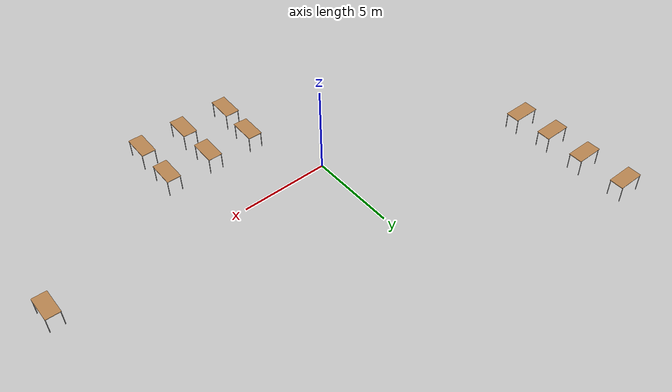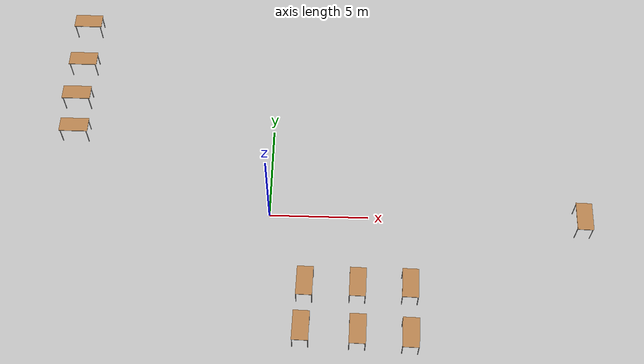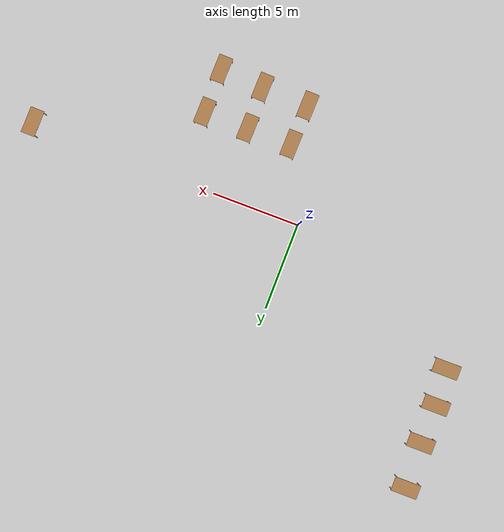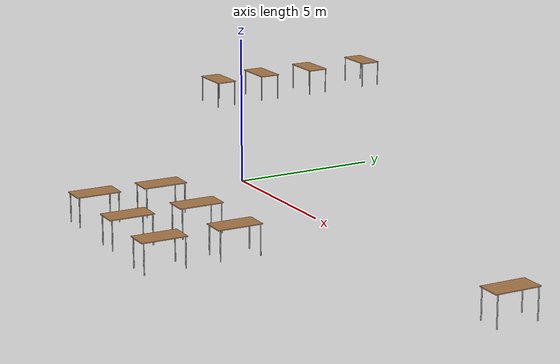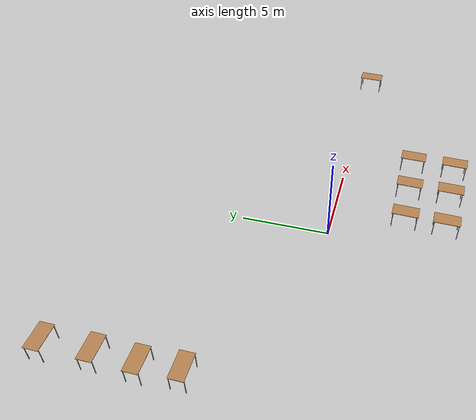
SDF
<?xml version='1.0'?>
<sdf version='1.6'>
  <model name='robot'>
    <model name='table'>
      <static>1</static>
      <link name='link'>
        <collision name='surface'>
          <pose frame=''>0 0 1 0 -0 0</pose>
          <geometry>
            <box>
              <size>1.5 0.8 0.03</size>
            </box>
          </geometry>
          <surface>
            <friction>
              <ode>
                <mu>0.6</mu>
                <mu2>0.6</mu2>
              </ode>
            </friction>
          </surface>
        </collision>
        <visual name='visual1'>
          <pose frame=''>0 0 1 0 -0 0</pose>
          <geometry>
            <box>
              <size>1.5 0.8 0.03</size>
            </box>
          </geometry>
          <material>
            <script>
              <uri>file://media/materials/scripts/gazebo.material</uri>
              <name>Gazebo/Wood</name>
            </script>
          </material>
        </visual>
        <collision name='front_left_leg'>
          <pose frame=''>0.68 0.38 0.5 0 -0 0</pose>
          <geometry>
            <cylinder>
              <radius>0.02</radius>
              <length>1</length>
            </cylinder>
          </geometry>
        </collision>
        <visual name='front_left_leg'>
          <pose frame=''>0.68 0.38 0.5 0 -0 0</pose>
          <geometry>
            <cylinder>
              <radius>0.02</radius>
              <length>1</length>
            </cylinder>
          </geometry>
          <material>
            <script>
              <uri>file://media/materials/scripts/gazebo.material</uri>
              <name>Gazebo/Grey</name>
            </script>
          </material>
        </visual>
        <collision name='front_right_leg'>
          <pose frame=''>0.68 -0.38 0.5 0 -0 0</pose>
          <geometry>
            <cylinder>
              <radius>0.02</radius>
              <length>1</length>
            </cylinder>
          </geometry>
        </collision>
        <visual name='front_right_leg'>
          <pose frame=''>0.68 -0.38 0.5 0 -0 0</pose>
          <geometry>
            <cylinder>
              <radius>0.02</radius>
              <length>1</length>
            </cylinder>
          </geometry>
          <material>
            <script>
              <uri>file://media/materials/scripts/gazebo.material</uri>
              <name>Gazebo/Grey</name>
            </script>
          </material>
        </visual>
        <collision name='back_right_leg'>
          <pose frame=''>-0.68 -0.38 0.5 0 -0 0</pose>
          <geometry>
            <cylinder>
              <radius>0.02</radius>
              <length>1</length>
            </cylinder>
          </geometry>
        </collision>
        <visual name='back_right_leg'>
          <pose frame=''>-0.68 -0.38 0.5 0 -0 0</pose>
          <geometry>
            <cylinder>
              <radius>0.02</radius>
              <length>1</length>
            </cylinder>
          </geometry>
          <material>
            <script>
              <uri>file://media/materials/scripts/gazebo.material</uri>
              <name>Gazebo/Grey</name>
            </script>
          </material>
        </visual>
        <collision name='back_left_leg'>
          <pose frame=''>-0.68 0.38 0.5 0 -0 0</pose>
          <geometry>
            <cylinder>
              <radius>0.02</radius>
              <length>1</length>
            </cylinder>
          </geometry>
        </collision>
        <visual name='back_left_leg'>
          <pose frame=''>-0.68 0.38 0.5 0 -0 0</pose>
          <geometry>
            <cylinder>
              <radius>0.02</radius>
              <length>1</length>
            </cylinder>
          </geometry>
          <material>
            <script>
              <uri>file://media/materials/scripts/gazebo.material</uri>
              <name>Gazebo/Grey</name>
            </script>
          </material>
        </visual>
      </link>
      <pose frame=''>-10.5095 4.55526 0 0 -0 0</pose>
    </model>
    <model name='table_clone'>
      <static>1</static>
      <link name='link'>
        <collision name='surface'>
          <pose frame=''>0 0 1 0 -0 0</pose>
          <geometry>
            <box>
              <size>1.5 0.8 0.03</size>
            </box>
          </geometry>
          <surface>
            <friction>
              <ode>
                <mu>0.6</mu>
                <mu2>0.6</mu2>
              </ode>
            </friction>
          </surface>
        </collision>
        <visual name='visual1'>
          <pose frame=''>0 0 1 0 -0 0</pose>
          <geometry>
            <box>
              <size>1.5 0.8 0.03</size>
            </box>
          </geometry>
          <material>
            <script>
              <uri>file://media/materials/scripts/gazebo.material</uri>
              <name>Gazebo/Wood</name>
            </script>
          </material>
        </visual>
        <collision name='front_left_leg'>
          <pose frame=''>0.68 0.38 0.5 0 -0 0</pose>
          <geometry>
            <cylinder>
              <radius>0.02</radius>
              <length>1</length>
            </cylinder>
          </geometry>
        </collision>
        <visual name='front_left_leg'>
          <pose frame=''>0.68 0.38 0.5 0 -0 0</pose>
          <geometry>
            <cylinder>
              <radius>0.02</radius>
              <length>1</length>
            </cylinder>
          </geometry>
          <material>
            <script>
              <uri>file://media/materials/scripts/gazebo.material</uri>
              <name>Gazebo/Grey</name>
            </script>
          </material>
        </visual>
        <collision name='front_right_leg'>
          <pose frame=''>0.68 -0.38 0.5 0 -0 0</pose>
          <geometry>
            <cylinder>
              <radius>0.02</radius>
              <length>1</length>
            </cylinder>
          </geometry>
        </collision>
        <visual name='front_right_leg'>
          <pose frame=''>0.68 -0.38 0.5 0 -0 0</pose>
          <geometry>
            <cylinder>
              <radius>0.02</radius>
              <length>1</length>
            </cylinder>
          </geometry>
          <material>
            <script>
              <uri>file://media/materials/scripts/gazebo.material</uri>
              <name>Gazebo/Grey</name>
            </script>
          </material>
        </visual>
        <collision name='back_right_leg'>
          <pose frame=''>-0.68 -0.38 0.5 0 -0 0</pose>
          <geometry>
            <cylinder>
              <radius>0.02</radius>
              <length>1</length>
            </cylinder>
          </geometry>
        </collision>
        <visual name='back_right_leg'>
          <pose frame=''>-0.68 -0.38 0.5 0 -0 0</pose>
          <geometry>
            <cylinder>
              <radius>0.02</radius>
              <length>1</length>
            </cylinder>
          </geometry>
          <material>
            <script>
              <uri>file://media/materials/scripts/gazebo.material</uri>
              <name>Gazebo/Grey</name>
            </script>
          </material>
        </visual>
        <collision name='back_left_leg'>
          <pose frame=''>-0.68 0.38 0.5 0 -0 0</pose>
          <geometry>
            <cylinder>
              <radius>0.02</radius>
              <length>1</length>
            </cylinder>
          </geometry>
        </collision>
        <visual name='back_left_leg'>
          <pose frame=''>-0.68 0.38 0.5 0 -0 0</pose>
          <geometry>
            <cylinder>
              <radius>0.02</radius>
              <length>1</length>
            </cylinder>
          </geometry>
          <material>
            <script>
              <uri>file://media/materials/scripts/gazebo.material</uri>
              <name>Gazebo/Grey</name>
            </script>
          </material>
        </visual>
      </link>
      <pose frame=''>-10.68 6.63716 0 0 -0 0</pose>
    </model>
    <model name='table_clone_0'>
      <static>1</static>
      <link name='link'>
        <collision name='surface'>
          <pose frame=''>0 0 1 0 -0 0</pose>
          <geometry>
            <box>
              <size>1.5 0.8 0.03</size>
            </box>
          </geometry>
          <surface>
            <friction>
              <ode>
                <mu>0.6</mu>
                <mu2>0.6</mu2>
              </ode>
            </friction>
          </surface>
        </collision>
        <visual name='visual1'>
          <pose frame=''>0 0 1 0 -0 0</pose>
          <geometry>
            <box>
              <size>1.5 0.8 0.03</size>
            </box>
          </geometry>
          <material>
            <script>
              <uri>file://media/materials/scripts/gazebo.material</uri>
              <name>Gazebo/Wood</name>
            </script>
          </material>
        </visual>
        <collision name='front_left_leg'>
          <pose frame=''>0.68 0.38 0.5 0 -0 0</pose>
          <geometry>
            <cylinder>
              <radius>0.02</radius>
              <length>1</length>
            </cylinder>
          </geometry>
        </collision>
        <visual name='front_left_leg'>
          <pose frame=''>0.68 0.38 0.5 0 -0 0</pose>
          <geometry>
            <cylinder>
              <radius>0.02</radius>
              <length>1</length>
            </cylinder>
          </geometry>
          <material>
            <script>
              <uri>file://media/materials/scripts/gazebo.material</uri>
              <name>Gazebo/Grey</name>
            </script>
          </material>
        </visual>
        <collision name='front_right_leg'>
          <pose frame=''>0.68 -0.38 0.5 0 -0 0</pose>
          <geometry>
            <cylinder>
              <radius>0.02</radius>
              <length>1</length>
            </cylinder>
          </geometry>
        </collision>
        <visual name='front_right_leg'>
          <pose frame=''>0.68 -0.38 0.5 0 -0 0</pose>
          <geometry>
            <cylinder>
              <radius>0.02</radius>
              <length>1</length>
            </cylinder>
          </geometry>
          <material>
            <script>
              <uri>file://media/materials/scripts/gazebo.material</uri>
              <name>Gazebo/Grey</name>
            </script>
          </material>
        </visual>
        <collision name='back_right_leg'>
          <pose frame=''>-0.68 -0.38 0.5 0 -0 0</pose>
          <geometry>
            <cylinder>
              <radius>0.02</radius>
              <length>1</length>
            </cylinder>
          </geometry>
        </collision>
        <visual name='back_right_leg'>
          <pose frame=''>-0.68 -0.38 0.5 0 -0 0</pose>
          <geometry>
            <cylinder>
              <radius>0.02</radius>
              <length>1</length>
            </cylinder>
          </geometry>
          <material>
            <script>
              <uri>file://media/materials/scripts/gazebo.material</uri>
              <name>Gazebo/Grey</name>
            </script>
          </material>
        </visual>
        <collision name='back_left_leg'>
          <pose frame=''>-0.68 0.38 0.5 0 -0 0</pose>
          <geometry>
            <cylinder>
              <radius>0.02</radius>
              <length>1</length>
            </cylinder>
          </geometry>
        </collision>
        <visual name='back_left_leg'>
          <pose frame=''>-0.68 0.38 0.5 0 -0 0</pose>
          <geometry>
            <cylinder>
              <radius>0.02</radius>
              <length>1</length>
            </cylinder>
          </geometry>
          <material>
            <script>
              <uri>file://media/materials/scripts/gazebo.material</uri>
              <name>Gazebo/Grey</name>
            </script>
          </material>
        </visual>
      </link>
      <pose frame=''>-10.6483 8.89565 0 0 -0 0</pose>
    </model>
    <model name='table_clone_1'>
      <static>1</static>
      <link name='link'>
        <collision name='surface'>
          <pose frame=''>0 0 1 0 -0 0</pose>
          <geometry>
            <box>
              <size>1.5 0.8 0.03</size>
            </box>
          </geometry>
          <surface>
            <friction>
              <ode>
                <mu>0.6</mu>
                <mu2>0.6</mu2>
              </ode>
            </friction>
          </surface>
        </collision>
        <visual name='visual1'>
          <pose frame=''>0 0 1 0 -0 0</pose>
          <geometry>
            <box>
              <size>1.5 0.8 0.03</size>
            </box>
          </geometry>
          <material>
            <script>
              <uri>file://media/materials/scripts/gazebo.material</uri>
              <name>Gazebo/Wood</name>
            </script>
          </material>
        </visual>
        <collision name='front_left_leg'>
          <pose frame=''>0.68 0.38 0.5 0 -0 0</pose>
          <geometry>
            <cylinder>
              <radius>0.02</radius>
              <length>1</length>
            </cylinder>
          </geometry>
        </collision>
        <visual name='front_left_leg'>
          <pose frame=''>0.68 0.38 0.5 0 -0 0</pose>
          <geometry>
            <cylinder>
              <radius>0.02</radius>
              <length>1</length>
            </cylinder>
          </geometry>
          <material>
            <script>
              <uri>file://media/materials/scripts/gazebo.material</uri>
              <name>Gazebo/Grey</name>
            </script>
          </material>
        </visual>
        <collision name='front_right_leg'>
          <pose frame=''>0.68 -0.38 0.5 0 -0 0</pose>
          <geometry>
            <cylinder>
              <radius>0.02</radius>
              <length>1</length>
            </cylinder>
          </geometry>
        </collision>
        <visual name='front_right_leg'>
          <pose frame=''>0.68 -0.38 0.5 0 -0 0</pose>
          <geometry>
            <cylinder>
              <radius>0.02</radius>
              <length>1</length>
            </cylinder>
          </geometry>
          <material>
            <script>
              <uri>file://media/materials/scripts/gazebo.material</uri>
              <name>Gazebo/Grey</name>
            </script>
          </material>
        </visual>
        <collision name='back_right_leg'>
          <pose frame=''>-0.68 -0.38 0.5 0 -0 0</pose>
          <geometry>
            <cylinder>
              <radius>0.02</radius>
              <length>1</length>
            </cylinder>
          </geometry>
        </collision>
        <visual name='back_right_leg'>
          <pose frame=''>-0.68 -0.38 0.5 0 -0 0</pose>
          <geometry>
            <cylinder>
              <radius>0.02</radius>
              <length>1</length>
            </cylinder>
          </geometry>
          <material>
            <script>
              <uri>file://media/materials/scripts/gazebo.material</uri>
              <name>Gazebo/Grey</name>
            </script>
          </material>
        </visual>
        <collision name='back_left_leg'>
          <pose frame=''>-0.68 0.38 0.5 0 -0 0</pose>
          <geometry>
            <cylinder>
              <radius>0.02</radius>
              <length>1</length>
            </cylinder>
          </geometry>
        </collision>
        <visual name='back_left_leg'>
          <pose frame=''>-0.68 0.38 0.5 0 -0 0</pose>
          <geometry>
            <cylinder>
              <radius>0.02</radius>
              <length>1</length>
            </cylinder>
          </geometry>
          <material>
            <script>
              <uri>file://media/materials/scripts/gazebo.material</uri>
              <name>Gazebo/Grey</name>
            </script>
          </material>
        </visual>
      </link>
      <pose frame=''>-10.7409 11.5113 0 0 -0 0</pose>
    </model>
    <model name='table_clone_2'>
      <static>1</static>
      <link name='link'>
        <collision name='surface'>
          <pose frame=''>0 0 1 0 -0 0</pose>
          <geometry>
            <box>
              <size>1.5 0.8 0.03</size>
            </box>
          </geometry>
          <surface>
            <friction>
              <ode>
                <mu>0.6</mu>
                <mu2>0.6</mu2>
              </ode>
            </friction>
          </surface>
        </collision>
        <visual name='visual1'>
          <pose frame=''>0 0 1 0 -0 0</pose>
          <geometry>
            <box>
              <size>1.5 0.8 0.03</size>
            </box>
          </geometry>
          <material>
            <script>
              <uri>file://media/materials/scripts/gazebo.material</uri>
              <name>Gazebo/Wood</name>
            </script>
          </material>
        </visual>
        <collision name='front_left_leg'>
          <pose frame=''>0.68 0.38 0.5 0 -0 0</pose>
          <geometry>
            <cylinder>
              <radius>0.02</radius>
              <length>1</length>
            </cylinder>
          </geometry>
        </collision>
        <visual name='front_left_leg'>
          <pose frame=''>0.68 0.38 0.5 0 -0 0</pose>
          <geometry>
            <cylinder>
              <radius>0.02</radius>
              <length>1</length>
            </cylinder>
          </geometry>
          <material>
            <script>
              <uri>file://media/materials/scripts/gazebo.material</uri>
              <name>Gazebo/Grey</name>
            </script>
          </material>
        </visual>
        <collision name='front_right_leg'>
          <pose frame=''>0.68 -0.38 0.5 0 -0 0</pose>
          <geometry>
            <cylinder>
              <radius>0.02</radius>
              <length>1</length>
            </cylinder>
          </geometry>
        </collision>
        <visual name='front_right_leg'>
          <pose frame=''>0.68 -0.38 0.5 0 -0 0</pose>
          <geometry>
            <cylinder>
              <radius>0.02</radius>
              <length>1</length>
            </cylinder>
          </geometry>
          <material>
            <script>
              <uri>file://media/materials/scripts/gazebo.material</uri>
              <name>Gazebo/Grey</name>
            </script>
          </material>
        </visual>
        <collision name='back_right_leg'>
          <pose frame=''>-0.68 -0.38 0.5 0 -0 0</pose>
          <geometry>
            <cylinder>
              <radius>0.02</radius>
              <length>1</length>
            </cylinder>
          </geometry>
        </collision>
        <visual name='back_right_leg'>
          <pose frame=''>-0.68 -0.38 0.5 0 -0 0</pose>
          <geometry>
            <cylinder>
              <radius>0.02</radius>
              <length>1</length>
            </cylinder>
          </geometry>
          <material>
            <script>
              <uri>file://media/materials/scripts/gazebo.material</uri>
              <name>Gazebo/Grey</name>
            </script>
          </material>
        </visual>
        <collision name='back_left_leg'>
          <pose frame=''>-0.68 0.38 0.5 0 -0 0</pose>
          <geometry>
            <cylinder>
              <radius>0.02</radius>
              <length>1</length>
            </cylinder>
          </geometry>
        </collision>
        <visual name='back_left_leg'>
          <pose frame=''>-0.68 0.38 0.5 0 -0 0</pose>
          <geometry>
            <cylinder>
              <radius>0.02</radius>
              <length>1</length>
            </cylinder>
          </geometry>
          <material>
            <script>
              <uri>file://media/materials/scripts/gazebo.material</uri>
              <name>Gazebo/Grey</name>
            </script>
          </material>
        </visual>
      </link>
      <pose frame=''>1.8297 -6.35647 0 0 -0 1.54687</pose>
    </model>
    <model name='table_clone_2_clone'>
      <static>1</static>
      <link name='link'>
        <collision name='surface'>
          <pose frame=''>0 0 1 0 -0 0</pose>
          <geometry>
            <box>
              <size>1.5 0.8 0.03</size>
            </box>
          </geometry>
          <surface>
            <friction>
              <ode>
                <mu>0.6</mu>
                <mu2>0.6</mu2>
              </ode>
            </friction>
          </surface>
        </collision>
        <visual name='visual1'>
          <pose frame=''>0 0 1 0 -0 0</pose>
          <geometry>
            <box>
              <size>1.5 0.8 0.03</size>
            </box>
          </geometry>
          <material>
            <script>
              <uri>file://media/materials/scripts/gazebo.material</uri>
              <name>Gazebo/Wood</name>
            </script>
          </material>
        </visual>
        <collision name='front_left_leg'>
          <pose frame=''>0.68 0.38 0.5 0 -0 0</pose>
          <geometry>
            <cylinder>
              <radius>0.02</radius>
              <length>1</length>
            </cylinder>
          </geometry>
        </collision>
        <visual name='front_left_leg'>
          <pose frame=''>0.68 0.38 0.5 0 -0 0</pose>
          <geometry>
            <cylinder>
              <radius>0.02</radius>
              <length>1</length>
            </cylinder>
          </geometry>
          <material>
            <script>
              <uri>file://media/materials/scripts/gazebo.material</uri>
              <name>Gazebo/Grey</name>
            </script>
          </material>
        </visual>
        <collision name='front_right_leg'>
          <pose frame=''>0.68 -0.38 0.5 0 -0 0</pose>
          <geometry>
            <cylinder>
              <radius>0.02</radius>
              <length>1</length>
            </cylinder>
          </geometry>
        </collision>
        <visual name='front_right_leg'>
          <pose frame=''>0.68 -0.38 0.5 0 -0 0</pose>
          <geometry>
            <cylinder>
              <radius>0.02</radius>
              <length>1</length>
            </cylinder>
          </geometry>
          <material>
            <script>
              <uri>file://media/materials/scripts/gazebo.material</uri>
              <name>Gazebo/Grey</name>
            </script>
          </material>
        </visual>
        <collision name='back_right_leg'>
          <pose frame=''>-0.68 -0.38 0.5 0 -0 0</pose>
          <geometry>
            <cylinder>
              <radius>0.02</radius>
              <length>1</length>
            </cylinder>
          </geometry>
        </collision>
        <visual name='back_right_leg'>
          <pose frame=''>-0.68 -0.38 0.5 0 -0 0</pose>
          <geometry>
            <cylinder>
              <radius>0.02</radius>
              <length>1</length>
            </cylinder>
          </geometry>
          <material>
            <script>
              <uri>file://media/materials/scripts/gazebo.material</uri>
              <name>Gazebo/Grey</name>
            </script>
          </material>
        </visual>
        <collision name='back_left_leg'>
          <pose frame=''>-0.68 0.38 0.5 0 -0 0</pose>
          <geometry>
            <cylinder>
              <radius>0.02</radius>
              <length>1</length>
            </cylinder>
          </geometry>
        </collision>
        <visual name='back_left_leg'>
          <pose frame=''>-0.68 0.38 0.5 0 -0 0</pose>
          <geometry>
            <cylinder>
              <radius>0.02</radius>
              <length>1</length>
            </cylinder>
          </geometry>
          <material>
            <script>
              <uri>file://media/materials/scripts/gazebo.material</uri>
              <name>Gazebo/Grey</name>
            </script>
          </material>
        </visual>
      </link>
      <pose frame=''>4.51926 -6.43961 0 0 -0 1.54687</pose>
    </model>
    <model name='table_clone_2_clone_clone'>
      <static>1</static>
      <link name='link'>
        <collision name='surface'>
          <pose frame=''>0 0 1 0 -0 0</pose>
          <geometry>
            <box>
              <size>1.5 0.8 0.03</size>
            </box>
          </geometry>
          <surface>
            <friction>
              <ode>
                <mu>0.6</mu>
                <mu2>0.6</mu2>
              </ode>
            </friction>
          </surface>
        </collision>
        <visual name='visual1'>
          <pose frame=''>0 0 1 0 -0 0</pose>
          <geometry>
            <box>
              <size>1.5 0.8 0.03</size>
            </box>
          </geometry>
          <material>
            <script>
              <uri>file://media/materials/scripts/gazebo.material</uri>
              <name>Gazebo/Wood</name>
            </script>
          </material>
        </visual>
        <collision name='front_left_leg'>
          <pose frame=''>0.68 0.38 0.5 0 -0 0</pose>
          <geometry>
            <cylinder>
              <radius>0.02</radius>
              <length>1</length>
            </cylinder>
          </geometry>
        </collision>
        <visual name='front_left_leg'>
          <pose frame=''>0.68 0.38 0.5 0 -0 0</pose>
          <geometry>
            <cylinder>
              <radius>0.02</radius>
              <length>1</length>
            </cylinder>
          </geometry>
          <material>
            <script>
              <uri>file://media/materials/scripts/gazebo.material</uri>
              <name>Gazebo/Grey</name>
            </script>
          </material>
        </visual>
        <collision name='front_right_leg'>
          <pose frame=''>0.68 -0.38 0.5 0 -0 0</pose>
          <geometry>
            <cylinder>
              <radius>0.02</radius>
              <length>1</length>
            </cylinder>
          </geometry>
        </collision>
        <visual name='front_right_leg'>
          <pose frame=''>0.68 -0.38 0.5 0 -0 0</pose>
          <geometry>
            <cylinder>
              <radius>0.02</radius>
              <length>1</length>
            </cylinder>
          </geometry>
          <material>
            <script>
              <uri>file://media/materials/scripts/gazebo.material</uri>
              <name>Gazebo/Grey</name>
            </script>
          </material>
        </visual>
        <collision name='back_right_leg'>
          <pose frame=''>-0.68 -0.38 0.5 0 -0 0</pose>
          <geometry>
            <cylinder>
              <radius>0.02</radius>
              <length>1</length>
            </cylinder>
          </geometry>
        </collision>
        <visual name='back_right_leg'>
          <pose frame=''>-0.68 -0.38 0.5 0 -0 0</pose>
          <geometry>
            <cylinder>
              <radius>0.02</radius>
              <length>1</length>
            </cylinder>
          </geometry>
          <material>
            <script>
              <uri>file://media/materials/scripts/gazebo.material</uri>
              <name>Gazebo/Grey</name>
            </script>
          </material>
        </visual>
        <collision name='back_left_leg'>
          <pose frame=''>-0.68 0.38 0.5 0 -0 0</pose>
          <geometry>
            <cylinder>
              <radius>0.02</radius>
              <length>1</length>
            </cylinder>
          </geometry>
        </collision>
        <visual name='back_left_leg'>
          <pose frame=''>-0.68 0.38 0.5 0 -0 0</pose>
          <geometry>
            <cylinder>
              <radius>0.02</radius>
              <length>1</length>
            </cylinder>
          </geometry>
          <material>
            <script>
              <uri>file://media/materials/scripts/gazebo.material</uri>
              <name>Gazebo/Grey</name>
            </script>
          </material>
        </visual>
      </link>
      <pose frame=''>7.01786 -6.5552 0 0 -0 1.54687</pose>
    </model>
    <model name='table_clone_2_clone_clone_clone'>
      <static>1</static>
      <link name='link'>
        <collision name='surface'>
          <pose frame=''>0 0 1 0 -0 0</pose>
          <geometry>
            <box>
              <size>1.5 0.8 0.03</size>
            </box>
          </geometry>
          <surface>
            <friction>
              <ode>
                <mu>0.6</mu>
                <mu2>0.6</mu2>
              </ode>
            </friction>
          </surface>
        </collision>
        <visual name='visual1'>
          <pose frame=''>0 0 1 0 -0 0</pose>
          <geometry>
            <box>
              <size>1.5 0.8 0.03</size>
            </box>
          </geometry>
          <material>
            <script>
              <uri>file://media/materials/scripts/gazebo.material</uri>
              <name>Gazebo/Wood</name>
            </script>
          </material>
        </visual>
        <collision name='front_left_leg'>
          <pose frame=''>0.68 0.38 0.5 0 -0 0</pose>
          <geometry>
            <cylinder>
              <radius>0.02</radius>
              <length>1</length>
            </cylinder>
          </geometry>
        </collision>
        <visual name='front_left_leg'>
          <pose frame=''>0.68 0.38 0.5 0 -0 0</pose>
          <geometry>
            <cylinder>
              <radius>0.02</radius>
              <length>1</length>
            </cylinder>
          </geometry>
          <material>
            <script>
              <uri>file://media/materials/scripts/gazebo.material</uri>
              <name>Gazebo/Grey</name>
            </script>
          </material>
        </visual>
        <collision name='front_right_leg'>
          <pose frame=''>0.68 -0.38 0.5 0 -0 0</pose>
          <geometry>
            <cylinder>
              <radius>0.02</radius>
              <length>1</length>
            </cylinder>
          </geometry>
        </collision>
        <visual name='front_right_leg'>
          <pose frame=''>0.68 -0.38 0.5 0 -0 0</pose>
          <geometry>
            <cylinder>
              <radius>0.02</radius>
              <length>1</length>
            </cylinder>
          </geometry>
          <material>
            <script>
              <uri>file://media/materials/scripts/gazebo.material</uri>
              <name>Gazebo/Grey</name>
            </script>
          </material>
        </visual>
        <collision name='back_right_leg'>
          <pose frame=''>-0.68 -0.38 0.5 0 -0 0</pose>
          <geometry>
            <cylinder>
              <radius>0.02</radius>
              <length>1</length>
            </cylinder>
          </geometry>
        </collision>
        <visual name='back_right_leg'>
          <pose frame=''>-0.68 -0.38 0.5 0 -0 0</pose>
          <geometry>
            <cylinder>
              <radius>0.02</radius>
              <length>1</length>
            </cylinder>
          </geometry>
          <material>
            <script>
              <uri>file://media/materials/scripts/gazebo.material</uri>
              <name>Gazebo/Grey</name>
            </script>
          </material>
        </visual>
        <collision name='back_left_leg'>
          <pose frame=''>-0.68 0.38 0.5 0 -0 0</pose>
          <geometry>
            <cylinder>
              <radius>0.02</radius>
              <length>1</length>
            </cylinder>
          </geometry>
        </collision>
        <visual name='back_left_leg'>
          <pose frame=''>-0.68 0.38 0.5 0 -0 0</pose>
          <geometry>
            <cylinder>
              <radius>0.02</radius>
              <length>1</length>
            </cylinder>
          </geometry>
          <material>
            <script>
              <uri>file://media/materials/scripts/gazebo.material</uri>
              <name>Gazebo/Grey</name>
            </script>
          </material>
        </visual>
      </link>
      <pose frame=''>1.93175 -4.04739 0 0 -0 1.54687</pose>
    </model>
    <model name='table_clone_2_clone_clone_clone_0'>
      <static>1</static>
      <link name='link'>
        <collision name='surface'>
          <pose frame=''>0 0 1 0 -0 0</pose>
          <geometry>
            <box>
              <size>1.5 0.8 0.03</size>
            </box>
          </geometry>
          <surface>
            <friction>
              <ode>
                <mu>0.6</mu>
                <mu2>0.6</mu2>
              </ode>
            </friction>
          </surface>
        </collision>
        <visual name='visual1'>
          <pose frame=''>0 0 1 0 -0 0</pose>
          <geometry>
            <box>
              <size>1.5 0.8 0.03</size>
            </box>
          </geometry>
          <material>
            <script>
              <uri>file://media/materials/scripts/gazebo.material</uri>
              <name>Gazebo/Wood</name>
            </script>
          </material>
        </visual>
        <collision name='front_left_leg'>
          <pose frame=''>0.68 0.38 0.5 0 -0 0</pose>
          <geometry>
            <cylinder>
              <radius>0.02</radius>
              <length>1</length>
            </cylinder>
          </geometry>
        </collision>
        <visual name='front_left_leg'>
          <pose frame=''>0.68 0.38 0.5 0 -0 0</pose>
          <geometry>
            <cylinder>
              <radius>0.02</radius>
              <length>1</length>
            </cylinder>
          </geometry>
          <material>
            <script>
              <uri>file://media/materials/scripts/gazebo.material</uri>
              <name>Gazebo/Grey</name>
            </script>
          </material>
        </visual>
        <collision name='front_right_leg'>
          <pose frame=''>0.68 -0.38 0.5 0 -0 0</pose>
          <geometry>
            <cylinder>
              <radius>0.02</radius>
              <length>1</length>
            </cylinder>
          </geometry>
        </collision>
        <visual name='front_right_leg'>
          <pose frame=''>0.68 -0.38 0.5 0 -0 0</pose>
          <geometry>
            <cylinder>
              <radius>0.02</radius>
              <length>1</length>
            </cylinder>
          </geometry>
          <material>
            <script>
              <uri>file://media/materials/scripts/gazebo.material</uri>
              <name>Gazebo/Grey</name>
            </script>
          </material>
        </visual>
        <collision name='back_right_leg'>
          <pose frame=''>-0.68 -0.38 0.5 0 -0 0</pose>
          <geometry>
            <cylinder>
              <radius>0.02</radius>
              <length>1</length>
            </cylinder>
          </geometry>
        </collision>
        <visual name='back_right_leg'>
          <pose frame=''>-0.68 -0.38 0.5 0 -0 0</pose>
          <geometry>
            <cylinder>
              <radius>0.02</radius>
              <length>1</length>
            </cylinder>
          </geometry>
          <material>
            <script>
              <uri>file://media/materials/scripts/gazebo.material</uri>
              <name>Gazebo/Grey</name>
            </script>
          </material>
        </visual>
        <collision name='back_left_leg'>
          <pose frame=''>-0.68 0.38 0.5 0 -0 0</pose>
          <geometry>
            <cylinder>
              <radius>0.02</radius>
              <length>1</length>
            </cylinder>
          </geometry>
        </collision>
        <visual name='back_left_leg'>
          <pose frame=''>-0.68 0.38 0.5 0 -0 0</pose>
          <geometry>
            <cylinder>
              <radius>0.02</radius>
              <length>1</length>
            </cylinder>
          </geometry>
          <material>
            <script>
              <uri>file://media/materials/scripts/gazebo.material</uri>
              <name>Gazebo/Grey</name>
            </script>
          </material>
        </visual>
      </link>
      <pose frame=''>4.49927 -4.0374 0 0 -0 1.54687</pose>
    </model>
    <model name='table_clone_2_clone_clone_clone_1'>
      <static>1</static>
      <link name='link'>
        <collision name='surface'>
          <pose frame=''>0 0 1 0 -0 0</pose>
          <geometry>
            <box>
              <size>1.5 0.8 0.03</size>
            </box>
          </geometry>
          <surface>
            <friction>
              <ode>
                <mu>0.6</mu>
                <mu2>0.6</mu2>
              </ode>
            </friction>
          </surface>
        </collision>
        <visual name='visual1'>
          <pose frame=''>0 0 1 0 -0 0</pose>
          <geometry>
            <box>
              <size>1.5 0.8 0.03</size>
            </box>
          </geometry>
          <material>
            <script>
              <uri>file://media/materials/scripts/gazebo.material</uri>
              <name>Gazebo/Wood</name>
            </script>
          </material>
        </visual>
        <collision name='front_left_leg'>
          <pose frame=''>0.68 0.38 0.5 0 -0 0</pose>
          <geometry>
            <cylinder>
              <radius>0.02</radius>
              <length>1</length>
            </cylinder>
          </geometry>
        </collision>
        <visual name='front_left_leg'>
          <pose frame=''>0.68 0.38 0.5 0 -0 0</pose>
          <geometry>
            <cylinder>
              <radius>0.02</radius>
              <length>1</length>
            </cylinder>
          </geometry>
          <material>
            <script>
              <uri>file://media/materials/scripts/gazebo.material</uri>
              <name>Gazebo/Grey</name>
            </script>
          </material>
        </visual>
        <collision name='front_right_leg'>
          <pose frame=''>0.68 -0.38 0.5 0 -0 0</pose>
          <geometry>
            <cylinder>
              <radius>0.02</radius>
              <length>1</length>
            </cylinder>
          </geometry>
        </collision>
        <visual name='front_right_leg'>
          <pose frame=''>0.68 -0.38 0.5 0 -0 0</pose>
          <geometry>
            <cylinder>
              <radius>0.02</radius>
              <length>1</length>
            </cylinder>
          </geometry>
          <material>
            <script>
              <uri>file://media/materials/scripts/gazebo.material</uri>
              <name>Gazebo/Grey</name>
            </script>
          </material>
        </visual>
        <collision name='back_right_leg'>
          <pose frame=''>-0.68 -0.38 0.5 0 -0 0</pose>
          <geometry>
            <cylinder>
              <radius>0.02</radius>
              <length>1</length>
            </cylinder>
          </geometry>
        </collision>
        <visual name='back_right_leg'>
          <pose frame=''>-0.68 -0.38 0.5 0 -0 0</pose>
          <geometry>
            <cylinder>
              <radius>0.02</radius>
              <length>1</length>
            </cylinder>
          </geometry>
          <material>
            <script>
              <uri>file://media/materials/scripts/gazebo.material</uri>
              <name>Gazebo/Grey</name>
            </script>
          </material>
        </visual>
        <collision name='back_left_leg'>
          <pose frame=''>-0.68 0.38 0.5 0 -0 0</pose>
          <geometry>
            <cylinder>
              <radius>0.02</radius>
              <length>1</length>
            </cylinder>
          </geometry>
        </collision>
        <visual name='back_left_leg'>
          <pose frame=''>-0.68 0.38 0.5 0 -0 0</pose>
          <geometry>
            <cylinder>
              <radius>0.02</radius>
              <length>1</length>
            </cylinder>
          </geometry>
          <material>
            <script>
              <uri>file://media/materials/scripts/gazebo.material</uri>
              <name>Gazebo/Grey</name>
            </script>
          </material>
        </visual>
      </link>
      <pose frame=''>7.03545 -4.02832 0 0 -0 1.54687</pose>
    </model>
    <model name='table_clone_2_clone_clone_clone_1_clone'>
      <static>1</static>
      <link name='link'>
        <collision name='surface'>
          <pose frame=''>0 0 1 0 -0 0</pose>
          <geometry>
            <box>
              <size>1.5 0.8 0.03</size>
            </box>
          </geometry>
          <surface>
            <friction>
              <ode>
                <mu>0.6</mu>
                <mu2>0.6</mu2>
              </ode>
            </friction>
          </surface>
        </collision>
        <visual name='visual1'>
          <pose frame=''>0 0 1 0 -0 0</pose>
          <geometry>
            <box>
              <size>1.5 0.8 0.03</size>
            </box>
          </geometry>
          <material>
            <script>
              <uri>file://media/materials/scripts/gazebo.material</uri>
              <name>Gazebo/Wood</name>
            </script>
          </material>
        </visual>
        <collision name='front_left_leg'>
          <pose frame=''>0.68 0.38 0.5 0 -0 0</pose>
          <geometry>
            <cylinder>
              <radius>0.02</radius>
              <length>1</length>
            </cylinder>
          </geometry>
        </collision>
        <visual name='front_left_leg'>
          <pose frame=''>0.68 0.38 0.5 0 -0 0</pose>
          <geometry>
            <cylinder>
              <radius>0.02</radius>
              <length>1</length>
            </cylinder>
          </geometry>
          <material>
            <script>
              <uri>file://media/materials/scripts/gazebo.material</uri>
              <name>Gazebo/Grey</name>
            </script>
          </material>
        </visual>
        <collision name='front_right_leg'>
          <pose frame=''>0.68 -0.38 0.5 0 -0 0</pose>
          <geometry>
            <cylinder>
              <radius>0.02</radius>
              <length>1</length>
            </cylinder>
          </geometry>
        </collision>
        <visual name='front_right_leg'>
          <pose frame=''>0.68 -0.38 0.5 0 -0 0</pose>
          <geometry>
            <cylinder>
              <radius>0.02</radius>
              <length>1</length>
            </cylinder>
          </geometry>
          <material>
            <script>
              <uri>file://media/materials/scripts/gazebo.material</uri>
              <name>Gazebo/Grey</name>
            </script>
          </material>
        </visual>
        <collision name='back_right_leg'>
          <pose frame=''>-0.68 -0.38 0.5 0 -0 0</pose>
          <geometry>
            <cylinder>
              <radius>0.02</radius>
              <length>1</length>
            </cylinder>
          </geometry>
        </collision>
        <visual name='back_right_leg'>
          <pose frame=''>-0.68 -0.38 0.5 0 -0 0</pose>
          <geometry>
            <cylinder>
              <radius>0.02</radius>
              <length>1</length>
            </cylinder>
          </geometry>
          <material>
            <script>
              <uri>file://media/materials/scripts/gazebo.material</uri>
              <name>Gazebo/Grey</name>
            </script>
          </material>
        </visual>
        <collision name='back_left_leg'>
          <pose frame=''>-0.68 0.38 0.5 0 -0 0</pose>
          <geometry>
            <cylinder>
              <radius>0.02</radius>
              <length>1</length>
            </cylinder>
          </geometry>
        </collision>
        <visual name='back_left_leg'>
          <pose frame=''>-0.68 0.38 0.5 0 -0 0</pose>
          <geometry>
            <cylinder>
              <radius>0.02</radius>
              <length>1</length>
            </cylinder>
          </geometry>
          <material>
            <script>
              <uri>file://media/materials/scripts/gazebo.material</uri>
              <name>Gazebo/Grey</name>
            </script>
          </material>
        </visual>
      </link>
      <pose frame=''>15.7454 -0.134941 0 0 -0 1.54687</pose>
    </model>
    <static>0</static>
    <allow_auto_disable>1</allow_auto_disable>
  </model>
</sdf>
